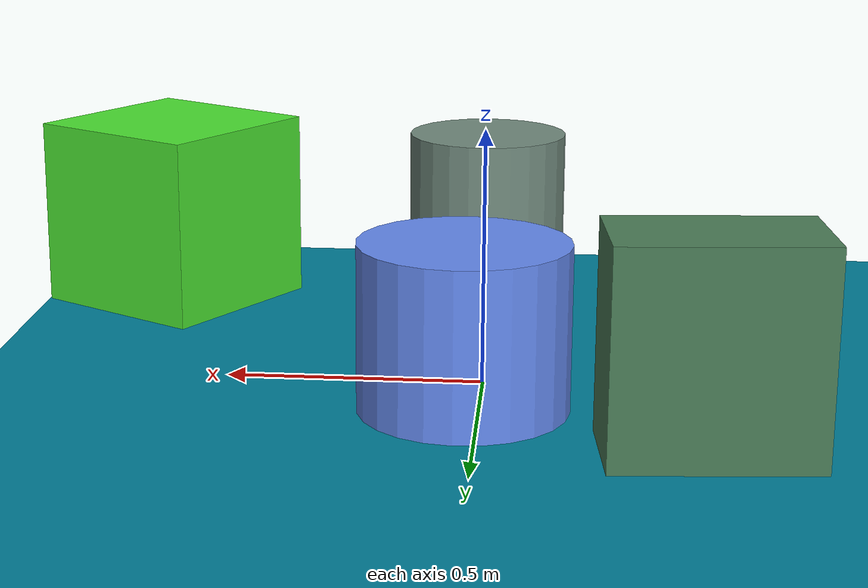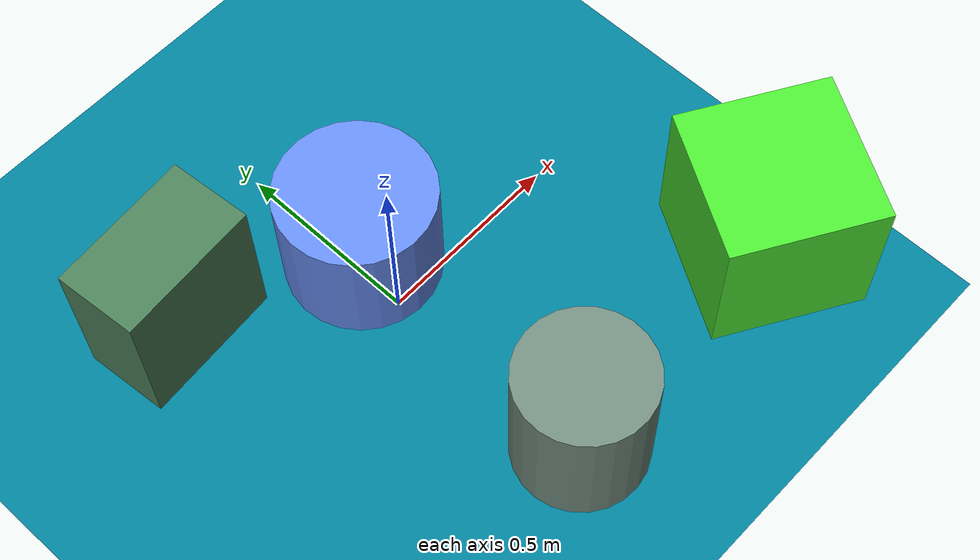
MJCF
<mujoco>
   <asset>
<texture type="skybox" builtin="gradient" rgb1="0.1 0.0 0.2" rgb2="0.3 0.9 1.0" width="256" height="256"/>
<texture name="gradient_0" builtin="gradient" rgb1="0.3 0.2 0.3" rgb2="0.6 0.9 0.7" width="200" height="200"/>
<texture name="gradient_1" builtin="gradient" rgb1="0.6 0.4 1.0" rgb2="0.2 0.7 0.9" width="200" height="200"/>
<texture name="gradient_2" builtin="gradient" rgb1="0.4 0.9 0.4" rgb2="0.2 0.1 0.3" width="200" height="200"/>
<texture name="flat_3" builtin="flat" rgb1="0.3 0.9 0.2" rgb2="0.3 0.9 0.2"  width="200" height="200"/><material name="gradient_0_mat" reflectance="0" texture="gradient_0" texuniform="true"/>
<material name="gradient_1_mat" reflectance="0" texture="gradient_1" texuniform="true"/>
<material name="gradient_2_mat" reflectance="0" texture="gradient_2" texuniform="true"/>
<material name="flat_3_mat" reflectance="0" texture="flat_3" texuniform="true"/>
   </asset>

   <worldbody>
      <light diffuse=".9 .9 .9" pos="0 0 3" dir="0 0 -1"/>
     <geom type="plane" size="1 1 0.1" rgba="0.0 0.5 0.6 1"/>
<geom type="cylinder" pos="0.02 -0.58 0.19" size="0.17 0.19 0.19" material="gradient_0_mat" euler="0 0 34" />
<geom type="cylinder" pos="0.03 0.15 0.16" size="0.2 0.16 0.16" material="gradient_1_mat" euler="0 0 43" />
<geom type="box" pos="-0.41 0.34 0.2" size="0.19 0.11 0.2" material="gradient_2_mat" euler="0 0 5" />
<geom type="box" pos="0.72 -0.56 0.2" size="0.2 0.2 0.2" material="flat_3_mat" euler="0 0 59" /><camera euler="60 0 180" fovy="60" name="camera1" pos="-0.2 -1.5 1"></camera>   </worldbody>
</mujoco>
